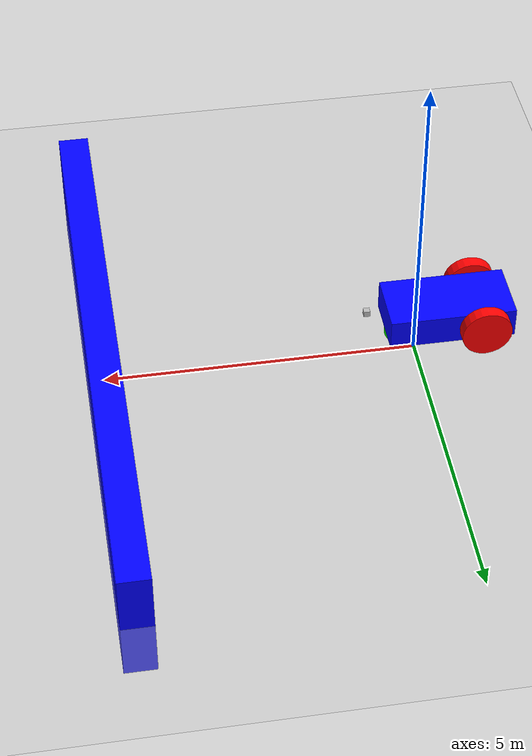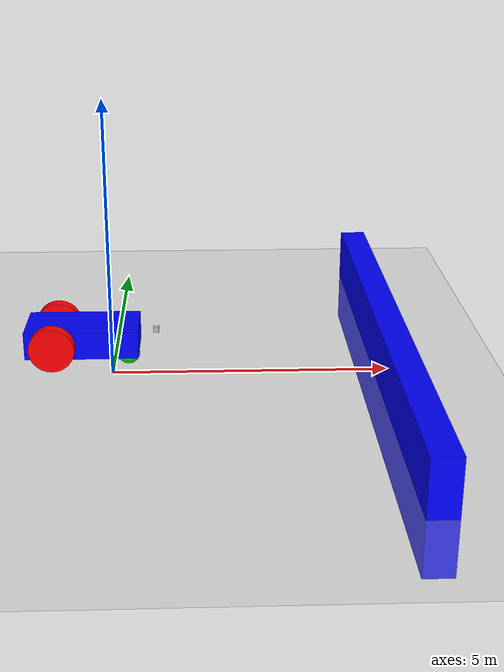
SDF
<?xml version="1.0" ?>
<sdf version="1.10">
    <world name="car_world">

        <!-- The physics tag specifies the type and properties of the dynamic engine -->
        <physics name="1ms" type="ignored">
            <max_step_size>0.001</max_step_size>
            <real_time_factor>1.0</real_time_factor>
        </physics>

        <!-- This plugin simulate the dynamics of the world -->
        <plugin
            filename="gz-sim-physics-system"
            name="gz::sim::systems::Physics">
        </plugin>

        <!-- This plugin is responsible for creating models, moving models, deleting them and many other user commands. -->
        <plugin
            filename="gz-sim-user-commands-system"
            name="gz::sim::systems::UserCommands">
        </plugin>

        <!-- This plugin shows our world scene -->
        <plugin
            filename="gz-sim-scene-broadcaster-system"
            name="gz::sim::systems::SceneBroadcaster">
        </plugin>

        <!-- Add this plugin for use the imu in the simulation -->
        <plugin
            filename="gz-sim-imu-system"
            name="gz::sim::systems::Imu">
        </plugin>

        <!-- Add this plugin for use the contact sensor in simulation -->
        <plugin
            filename="gz-sim-contact-system"
            name="gz::sim::systems::Contact">
        </plugin>

        <!-- Add this plugin for use the LiDAR sensor in the simulation  -->
        <plugin
            filename="gz-sim-sensors-system"
            name="gz::sim::systems::Sensors">
            <render_engine>ogre2</render_engine>
        </plugin>

        <!-- Here we specify anything related to the GUI of Gazebo -->
        <gui fullscreen="0">

            <!-- They are responsible for displaying the 3D scene of our world -->
            <!-- 3D scene -->
            <plugin filename="MinimalScene" name="3D View">
            <gz-gui>
                <title>3D View</title>
                <property type="bool" key="showTitleBar">false</property>
                <property type="string" key="state">docked</property>
            </gz-gui>

            <engine>ogre2</engine>
            <scene>scene</scene>
            <ambient_light>0.4 0.4 0.4</ambient_light>
            <background_color>0.8 0.8 0.8</background_color>
            <camera_pose>-6 0 6 0 0.5 0</camera_pose>
            <camera_clip>
                <near>0.25</near>
                <far>25000</far>
            </camera_clip>
            </plugin>
            <plugin filename="GzSceneManager" name="Scene Manager">
            <gz-gui>
                <property key="resizable" type="bool">false</property>
                <property key="width" type="double">5</property>
                <property key="height" type="double">5</property>
                <property key="state" type="string">floating</property>
                <property key="showTitleBar" type="bool">false</property>
            </gz-gui>
            </plugin>

            <!-- World control -->
            <!-- This plugin is responsible for controlling the world, for aspects like, pause, play and even publish in a topic -->
            <plugin filename="WorldControl" name="World control">
                <gz-gui>
                    <title>World control</title>
                    <property type="bool" key="showTitleBar">false</property>
                    <property type="bool" key="resizable">false</property>
                    <property type="double" key="height">72</property>
                    <property type="double" key="width">121</property>
                    <property type="double" key="z">1</property>

                    <property type="string" key="state">floating</property>
                    <anchors target="3D View">
                    <line own="left" target="left"/>
                    <line own="bottom" target="bottom"/>
                    </anchors>
                </gz-gui>

                <play_pause>true</play_pause>
                <step>true</step>
                <start_paused>true</start_paused>
                <service>/world/world_demo/control</service>
                <stats_topic>/world/world_demo/stats</stats_topic>
            </plugin>

            <!-- World statistics -->
            <!-- This plugin is responsible for displaying the world statistics -->
            <plugin filename="WorldStats" name="World stats">
                <gz-gui>
                    <title>World stats</title>
                    <property type="bool" key="showTitleBar">false</property>
                    <property type="bool" key="resizable">false</property>
                    <property type="double" key="height">110</property>
                    <property type="double" key="width">290</property>
                    <property type="double" key="z">1</property>

                    <property type="string" key="state">floating</property>
                    <anchors target="3D View">
                    <line own="right" target="right"/>
                    <line own="bottom" target="bottom"/>
                    </anchors>
                </gz-gui>

                <sim_time>true</sim_time>
                <real_time>true</real_time>
                <real_time_factor>true</real_time_factor>
                <iterations>true</iterations>
                <topic>/world/world_demo/stats</topic>
            </plugin>

        </gui>

        <light type="directional" name="sun">
            <cast_shadows>true</cast_shadows>
            <pose>0 0 10 0 0 0</pose>
            <diffuse>0.8 0.8 0.8 1</diffuse>
            <specular>0.2 0.2 0.2 1</specular>
            <attenuation>
                <range>1000</range>
                <constant>0.9</constant>
                <linear>0.01</linear>
                <quadratic>0.001</quadratic>
            </attenuation>
            <direction>-0.5 0.1 -0.9</direction>
        </light>

        <model name="ground_plane">
            <static>true</static>
            <link name="link">
                <collision name="collision">
                <geometry>
                    <plane>
                    <normal>0 0 1</normal>
                    </plane>
                </geometry>
                </collision>
                <visual name="visual">
                <geometry>
                    <plane>
                    <normal>0 0 1</normal>
                    <size>100 100</size>
                    </plane>
                </geometry>
                <material>
                    <ambient>0.8 0.8 0.8 1</ambient>
                    <diffuse>0.8 0.8 0.8 1</diffuse>
                    <specular>0.8 0.8 0.8 1</specular>
                </material>
                </visual>
            </link>
        </model>

        <!-- Defining the model that we are adding into the scene, that in this case it will be a car -->
        <!--* CAR MODEL  -->
        <model name="robot">
            <self_collide>true</self_collide>
            <pose>0 0 0.35 0 0 0</pose>
            <include merge="true">
                <uri>file:///home/leticia/ros2_ws/src/tutorial_simulacao/simulation/robot.sdf</uri>
            </include>

            <plugin
                filename="gz-sim-joint-state-publisher-system"
                name="gz::sim::systems::JointStatePublisher">
            </plugin>

            <plugin
                filename="gz-sim-pose-publisher-system"
                name="gz::sim::systems::PosePublisher">
                <publish_link_pose>true</publish_link_pose>
                <use_pose_vector_msg>true</use_pose_vector_msg>
                <static_publisher>true</static_publisher>
                <static_update_frequency>1</static_update_frequency>
            </plugin>

            <plugin
                filename="gz-sim-odometry-publisher-system"
                name="gz::sim::systems::OdometryPublisher">
                <odom_frame>odom</odom_frame>
                <robot_base_frame>robot</robot_base_frame>
            </plugin>

            <!--* Moving Forward-->
            <!-- Enable commands from the keyboard  -->
            <plugin filename="gz-sim-triggered-publisher-system"
                    name="gz::sim::systems::TriggeredPublisher">
                <input type="gz.msgs.Int32" topic="/keyboard/keypress">
                    <match field="data">16777235</match>
                </input>
                <output type="gz.msgs.Twist" topic="/cmd_vel">
                    linear: {x: 0.5}, angular: {z: 0.0}
                </output>
            </plugin>
        </model>

        <!--* Moving Backwards-->
        <!-- Enable commands from the keyboard  -->
        <plugin filename="gz-sim-triggered-publisher-system"
                name="gz::sim::systems::TriggeredPublisher">
            <input type="gz.msgs.Int32" topic="/keyboard/keypress">
                <match field="data">16777237</match>
            </input>
            <output type="gz.msgs.Twist" topic="/cmd_vel">
                linear: {x: -0.5}, angular: {z: 0.0}
            </output>
        </plugin>

        <!--* Moving Right-->
        <!-- Enable commands from the keyboard  -->
        <plugin filename="gz-sim-triggered-publisher-system"
                name="gz::sim::systems::TriggeredPublisher">
            <input type="gz.msgs.Int32" topic="/keyboard/keypress">
                <match field="data">16777236</match>
            </input>
            <output type="gz.msgs.Twist" topic="/cmd_vel">
                linear: {x: 0.0}, angular: {z: -0.5}
            </output>
        </plugin>

        <!--* Moving Left-->
        <!-- Enable commands from the keyboard  -->
        <plugin filename="gz-sim-triggered-publisher-system"
                name="gz::sim::systems::TriggeredPublisher">
            <input type="gz.msgs.Int32" topic="/keyboard/keypress">
                <match field="data">16777234</match>
            </input>
            <output type="gz.msgs.Twist" topic="/cmd_vel">
                linear: {x: 0.0}, angular: {z: 0.5}
            </output>
        </plugin>

         <!--* Stop -->
        <!-- Enable commands from the keyboard  -->
        <plugin filename="gz-sim-triggered-publisher-system"
                name="gz::sim::systems::TriggeredPublisher">
            <input type="gz.msgs.Int32" topic="/keyboard/keypress">
                <match field="data">16777248</match>
            </input>
            <output type="gz.msgs.Twist" topic="/cmd_vel">
                linear: {x: 0.0}, angular: {z: 0.0}
            </output>
        </plugin>

        <!-- Add a wall in the simulation  -->
        <model name='wall'>
            <static>true</static>
            <pose>5 0 0 0 0 0</pose><!--pose relative to the world-->
            <link name='box'>
                <visual name='visual'>
                    <geometry>
                        <box>
                            <size>0.5 10.0 2.0</size>
                        </box>
                    </geometry>
                    <!--let's add color to our link-->
                    <material>
                        <ambient>0.0 0.0 1.0 1</ambient>
                        <diffuse>0.0 0.0 1.0 1</diffuse>
                        <specular>0.0 0.0 1.0 1</specular>
                    </material>
                </visual>
                <collision name='collision'>
                    <geometry>
                        <box>
                            <size>0.5 10.0 2.0</size>
                        </box>
                    </geometry>
                </collision>

                <!-- Add the sensor in the wall -->
                <sensor name='sensor_contact' type='contact'>
                    <contact>
                        <collision>collision</collision>
                    </contact>
                </sensor>
            </link>

            <!-- The TouchPlugin will publish (send) a message when the wall has been touched -->
            <plugin filename="gz-sim-touchplugin-system"
                    name="gz::sim::systems::TouchPlugin">
                <target>vehicle_blue</target>
                <namespace>wall</namespace>
                <time>0.001</time>
                <enabled>true</enabled>
            </plugin>
        </model>

    </world>

</sdf>

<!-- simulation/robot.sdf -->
<sdf version="1.10">
    <!-- Defining the model that we are adding into the scene, that in this case it will be a car -->
    <!--* CAR MODEL  -->
    <model name='robot'>

        <!--* CHASSIS  -->
        <link name='chassis'>
            <pose>-0.5 0 0.4 0 0 0</pose>    <!-- its pose relative to the model -->

            <inertial> <!--inertial properties of the link mass, inertia matix-->
                <mass>1.14395</mass>
                <inertia>
                    <ixx>0.095329</ixx>
                    <ixy>0</ixy>
                    <ixz>0</ixz>
                    <iyy>0.381317</iyy>
                    <iyz>0</iyz>
                    <izz>0.476646</izz>
                </inertia>
            </inertial>

            <visual name='visual_chassis'>
                <geometry>
                    <box>
                        <size>2.0 1.0 0.5</size>
                    </box>
                </geometry>
                <!--let's add color to our link-->
                <material>
                    <ambient>0.0 0.0 1.0 1</ambient>
                    <diffuse>0.0 0.0 1.0 1</diffuse>
                    <specular>0.0 0.0 1.0 1</specular>
                </material>
            </visual>

            <collision name='collision_chassis'>
                <geometry>
                    <box>
                        <size>2.0 1.0 0.5</size>
                    </box>
                </geometry>
            </collision>
        </link>

        <!--* LEFT WHEEL  -->
        <link name='left_wheel'>
            <pose relative_to="chassis">-0.5 0.6 0 -1.5707 0 0</pose>
            <inertial>
                <mass>1</mass>
                <inertia>
                    <ixx>0.043333</ixx>
                    <ixy>0</ixy>
                    <ixz>0</ixz>
                    <iyy>0.043333</iyy>
                    <iyz>0</iyz>
                    <izz>0.08</izz>
                </inertia>
            </inertial>

            <visual name='visual_left_wheel'>
                <geometry>
                    <cylinder>
                        <radius>0.4</radius>
                        <length>0.2</length>
                    </cylinder>
                </geometry>
                <material>
                    <ambient>1.0 0.0 0.0 1</ambient>
                    <diffuse>1.0 0.0 0.0 1</diffuse>
                    <specular>1.0 0.0 0.0 1</specular>
                </material>
            </visual>
            <collision name='collision_left_wheel'>
                <geometry>
                    <cylinder>
                        <radius>0.4</radius>
                        <length>0.2</length>
                    </cylinder>
                </geometry>
            </collision>
        </link>

        <!--* LEFT WHEEL JOINT -->
        <joint name='left_wheel_joint' type='revolute'>
            <parent>chassis</parent>
            <child>left_wheel</child>
            <axis>
            <xyz>0 0 1</xyz>
            <limit>
                <lower>-1.79769e+308</lower>
                <upper>1.79769e+308</upper>
            </limit>
            </axis>
        </joint>

        <!--* RIGHT WHEEL -->
        <link name='right_wheel'>
            <pose relative_to="chassis">-0.5 -0.6 0 -1.5707 0 0</pose> <!--angles are in radian-->
            <inertial>
                <mass>1</mass>
                <inertia>
                    <ixx>0.043333</ixx>
                    <ixy>0</ixy>
                    <ixz>0</ixz>
                    <iyy>0.043333</iyy>
                    <iyz>0</iyz>
                    <izz>0.08</izz>
                </inertia>
            </inertial>
            <visual name='visual_right_wheel'>
                <geometry>
                    <cylinder>
                        <radius>0.4</radius>
                        <length>0.2</length>
                    </cylinder>
                </geometry>
                <material>
                    <ambient>1.0 0.0 0.0 1</ambient>
                    <diffuse>1.0 0.0 0.0 1</diffuse>
                    <specular>1.0 0.0 0.0 1</specular>
                </material>
            </visual>
            <collision name='collision_right_wheel'>
                <geometry>
                    <cylinder>
                        <radius>0.4</radius>
                        <length>0.2</length>
                    </cylinder>
                </geometry>
            </collision>
        </link>

        <!--* RIGHT WHEEL JOINT -->
        <joint name='right_wheel_joint' type='revolute'>
            <parent>chassis</parent>
            <child>right_wheel</child>
            <axis>
            <xyz>0 0 1</xyz>
            <limit>
                <lower>-1.79769e+308</lower>
                <upper>1.79769e+308</upper>
            </limit>
            </axis>
        </joint>

        <!--*CASTER WHEEL-->
        <link name='caster'>
            <pose relative_to="chassis">0.8 0 -0.35 0 0 0</pose>
            <inertial>
                <mass>1</mass>
                <inertia>
                    <ixx>0.016</ixx>
                    <ixy>0</ixy>
                    <ixz>0</ixz>
                    <iyy>0.016</iyy>
                    <iyz>0</iyz>
                    <izz>0.016</izz>
                </inertia>
            </inertial>
            <visual name='visual'>
                <geometry>
                    <sphere>
                        <radius>0.2</radius>
                    </sphere>
                </geometry>
                <material>
                    <ambient>0.0 1 0.0 1</ambient>
                    <diffuse>0.0 1 0.0 1</diffuse>
                    <specular>0.0 1 0.0 1</specular>
                </material>
            </visual>
            <collision name='collision'>
                <geometry>
                    <sphere>
                        <radius>0.2</radius>
                    </sphere>
                </geometry>
            </collision>
        </link>

        <!--*CASTER WHEEL JOINT-->
        <joint name='caster_wheel_joint' type='revolute'>
            <parent>chassis</parent>
            <child>caster</child>
            <axis>
            <xyz>0 0 1</xyz>
            <limit>
                <lower>-1.79769e+308</lower>
                <upper>1.79769e+308</upper>
            </limit>
            </axis>
        </joint>

        <!-- LiDAR SENSOR -->
        <!-- Different from the simulation, here we need to add a link for the sensor, and them put the sensor tag -->
        <link name="lidar_link">
            <pose>0.8 0 0.5 0 0 0</pose>
            <inertial>
            <mass>0.1</mass>
            <inertia>
                <ixx>0.000166667</ixx>
                <iyy>0.000166667</iyy>
                <izz>0.000166667</izz>
            </inertia>
            </inertial>
            <collision name="collision">
            <geometry>
                <box>
                <size>0.1 0.1 0.1</size>
                </box>
            </geometry>
            </collision>
            <visual name="visual">
            <geometry>
                <box>
                <size>0.1 0.1 0.1</size>
                </box>
            </geometry>
            </visual>
            <sensor name='gpu_lidar' type='gpu_lidar'>
            <pose>0 0 0 0 0 0</pose>
            <topic>scan</topic>
            <gz_frame_id>robot/lidar_link</gz_frame_id>
            <update_rate>10</update_rate>
            <lidar>
                <scan>
                <horizontal>
                    <samples>640</samples>
                    <resolution>1</resolution>
                    <min_angle>-1.396263</min_angle>
                    <max_angle>1.396263</max_angle>
                </horizontal>
                <vertical>
                    <samples>1</samples>
                    <resolution>1</resolution>
                    <min_angle>0.0</min_angle>
                    <max_angle>0.0</max_angle>
                </vertical>
                </scan>
                <range>
                <min>0.08</min>
                <max>10.0</max>
                <resolution>0.01</resolution>
                </range>
            </lidar>
            <visualize>true</visualize>
            </sensor>
        </link>

        <joint name='lidar_joint' type='fixed'>
            <parent>chassis</parent>
            <child>lidar_link</child>
        </joint>

        <!--* Add o plugin enable diff drive movement   -->
        <plugin
            filename="gz-sim-diff-drive-system"
            name="gz::sim::systems::DiffDrive">
            <left_joint>left_wheel_joint</left_joint>
            <right_joint>right_wheel_joint</right_joint>
            <wheel_separation>1.2</wheel_separation>
            <wheel_radius>0.4</wheel_radius>
            <odom_publish_frequency>1</odom_publish_frequency>
            <topic>cmd_vel</topic>
        </plugin>

    </model>

</sdf>
